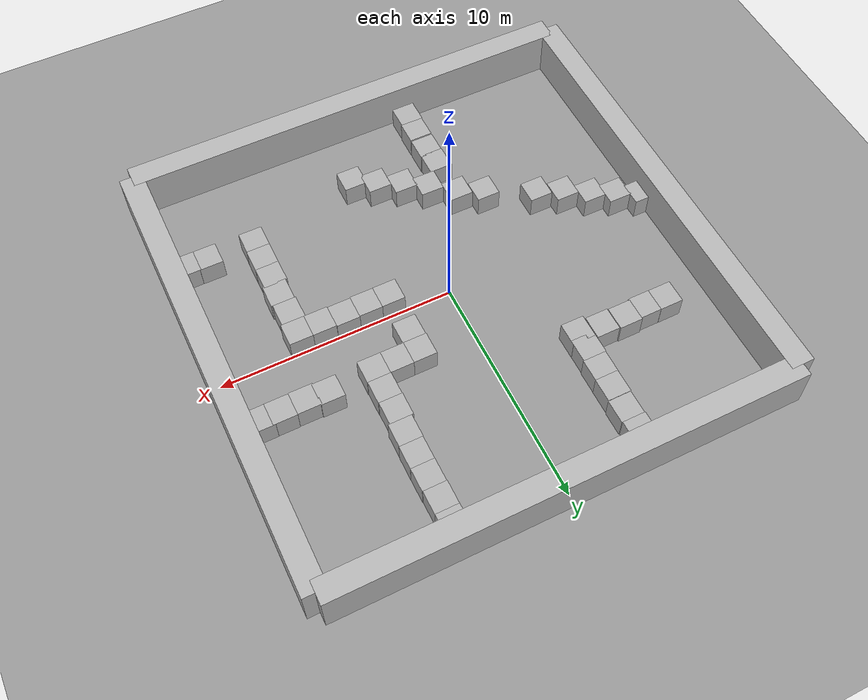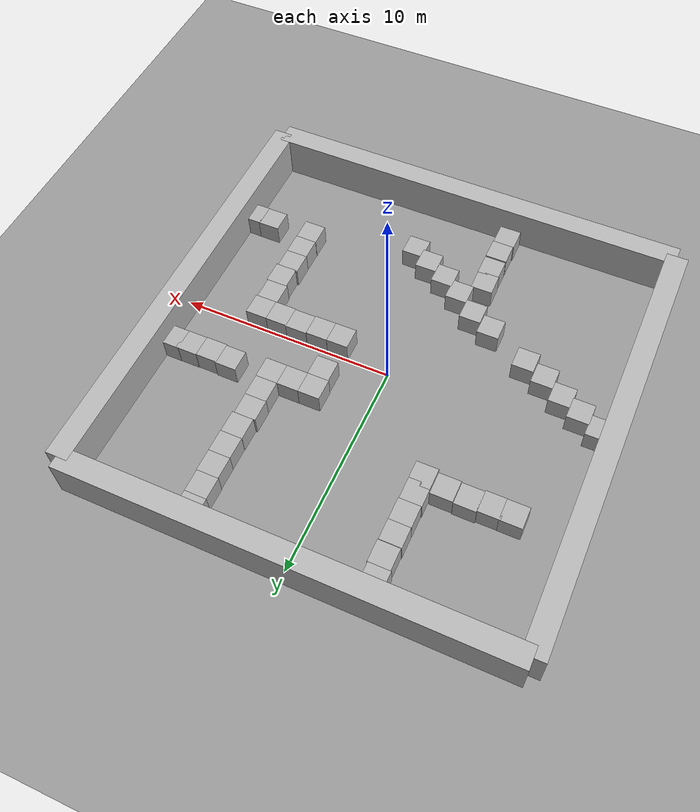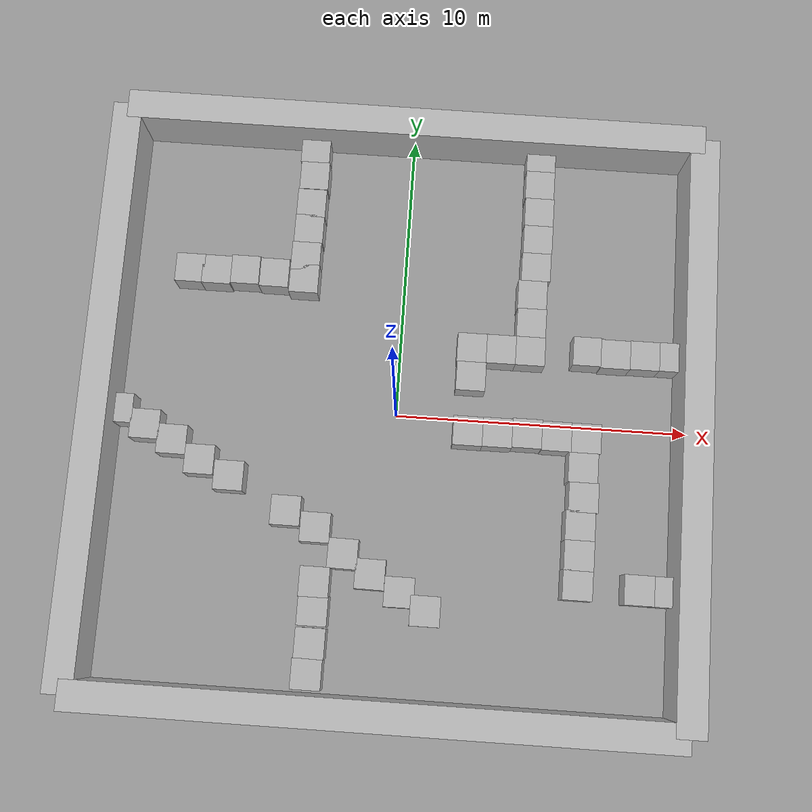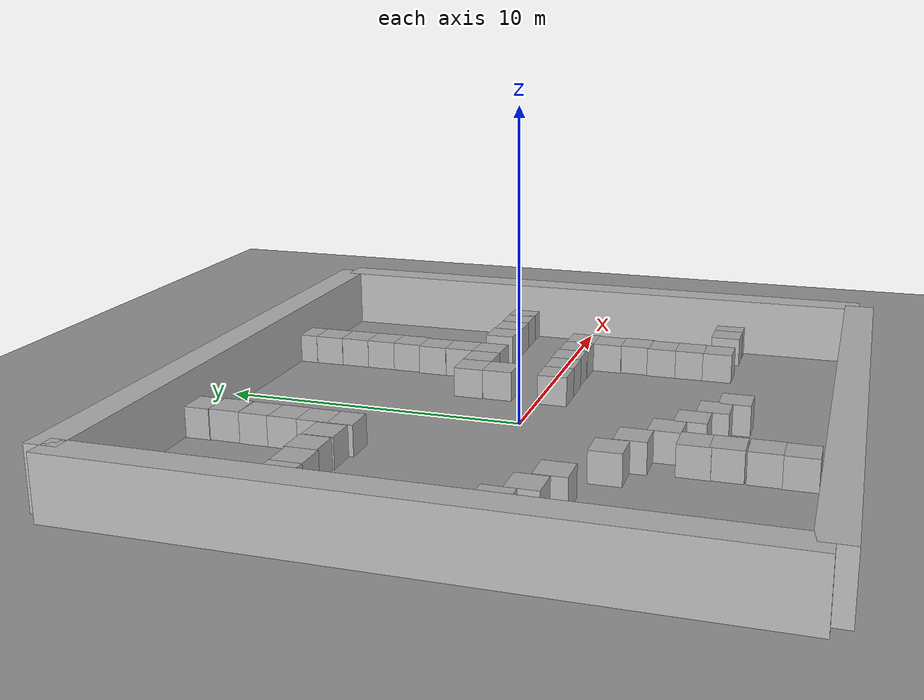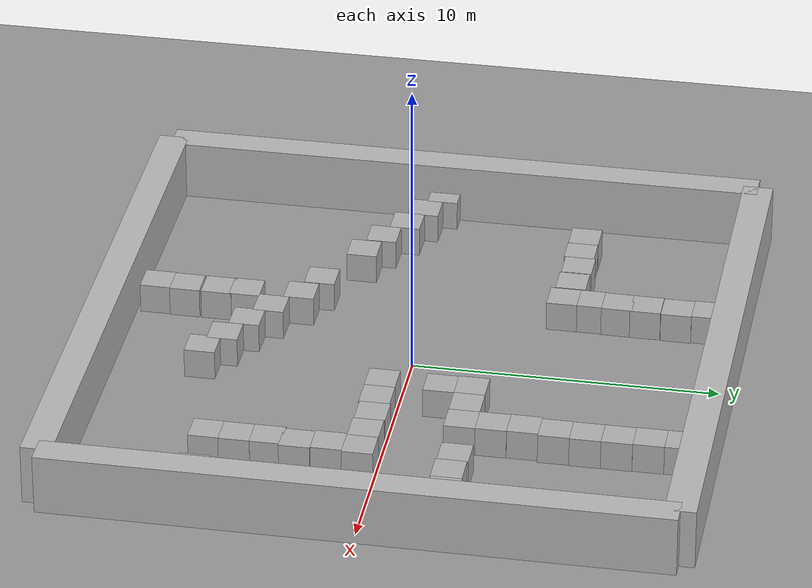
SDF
<sdf version="1.9">
 <world name="enclosed_world">
  <model name="ground_plane">
   <static>true</static>
   <link name="link">
    <collision name="col">
     <geometry><plane><normal>0 0 1</normal><size>100 100</size></plane></geometry>
     <surface><friction><ode><mu>1</mu><mu2>1</mu2></ode></friction></surface>
    </collision>
    <visual name="vis">
     <geometry><plane><normal>0 0 1</normal><size>100 100</size></plane></geometry>
     <material><ambient>0.6 0.6 0.6 1</ambient><diffuse>0.6 0.6 0.6 1</diffuse></material>
    </visual>
    <inertial>
     <mass>1</mass>
     <inertia><ixx>1</ixx><ixy>0</ixy><ixz>0</ixz><iyy>1</iyy><iyz>0</iyz><izz>1</izz></inertia>
    </inertial>
   </link>
  </model>
  <model name="wall_north">
   <static>true</static>
   <pose>0 10 1 0 -0 0</pose>
   <link name="l">
    <collision name="c"><geometry><box><size>20 1 2</size></box></geometry></collision>
    <visual name="v"><geometry><box><size>20 1 2</size></box></geometry></visual>
    <inertial>
     <mass>1</mass>
     <inertia><ixx>1</ixx><ixy>0</ixy><ixz>0</ixz><iyy>1</iyy><iyz>0</iyz><izz>1</izz></inertia>
    </inertial>
   </link>
  </model>
  <model name="wall_south">
   <static>true</static>
   <pose>0 -10 1 0 -0 0</pose>
   <link name="l">
    <collision name="c"><geometry><box><size>20 1 2</size></box></geometry></collision>
    <visual name="v"><geometry><box><size>20 1 2</size></box></geometry></visual>
    <inertial>
     <mass>1</mass>
     <inertia><ixx>1</ixx><ixy>0</ixy><ixz>0</ixz><iyy>1</iyy><iyz>0</iyz><izz>1</izz></inertia>
    </inertial>
   </link>
  </model>
  <model name="wall_east">
   <static>true</static>
   <pose>10 0 1 0 -0 0</pose>
   <link name="l">
    <collision name="c"><geometry><box><size>1 20 2</size></box></geometry></collision>
    <visual name="v"><geometry><box><size>1 20 2</size></box></geometry></visual>
    <inertial>
     <mass>1</mass>
     <inertia><ixx>1</ixx><ixy>0</ixy><ixz>0</ixz><iyy>1</iyy><iyz>0</iyz><izz>1</izz></inertia>
    </inertial>
   </link>
  </model>
  <model name="wall_west">
   <static>true</static>
   <pose>-10 0 1 0 -0 0</pose>
   <link name="l">
    <collision name="c"><geometry><box><size>1 20 2</size></box></geometry></collision>
    <visual name="v"><geometry><box><size>1 20 2</size></box></geometry></visual>
    <inertial>
     <mass>1</mass>
     <inertia><ixx>1</ixx><ixy>0</ixy><ixz>0</ixz><iyy>1</iyy><iyz>0</iyz><izz>1</izz></inertia>
    </inertial>
   </link>
  </model>
  <model name="box">
   <pose>4.44078 2.36959 0.5 0 0 -0</pose>
   <link name="box_link">
    <inertial>
     <inertia><ixx>0.16666</ixx><ixy>0</ixy><ixz>0</ixz><iyy>0.16666</iyy><iyz>0</iyz><izz>0.16666</izz></inertia>
     <mass>1</mass>
    </inertial>
    <collision name="box_collision"><geometry><box><size>1 1 1</size></box></geometry></collision>
    <visual name="box_visual">
     <geometry><box><size>1 1 1</size></box></geometry>
     <material>
      <ambient>0.3 0.3 0.3 1</ambient>
      <diffuse>0.7 0.7 0.7 1</diffuse>
      <specular>1 1 1 1</specular>
     </material>
    </visual>
   </link>
   <static>false</static>
  </model>
  <model name="box_0">
   <pose>3.44078 2.36959 0.5 0 0 -3e-06</pose>
   <link name="box_link">
    <inertial>
     <inertia><ixx>0.16666</ixx><ixy>0</ixy><ixz>0</ixz><iyy>0.16666</iyy><iyz>0</iyz><izz>0.16666</izz></inertia>
     <mass>1</mass>
    </inertial>
    <collision name="box_collision"><geometry><box><size>1 1 1</size></box></geometry></collision>
    <visual name="box_visual">
     <geometry><box><size>1 1 1</size></box></geometry>
     <material>
      <ambient>0.3 0.3 0.3 1</ambient>
      <diffuse>0.7 0.7 0.7 1</diffuse>
      <specular>1 1 1 1</specular>
     </material>
    </visual>
   </link>
   <static>false</static>
  </model>
  <model name="box_1">
   <pose>2.44078 2.36509 0.5 -0 -0 -0</pose>
   <link name="box_link">
    <inertial>
     <inertia><ixx>0.16666</ixx><ixy>0</ixy><ixz>0</ixz><iyy>0.16666</iyy><iyz>0</iyz><izz>0.16666</izz></inertia>
     <mass>1</mass>
    </inertial>
    <collision name="box_collision"><geometry><box><size>1 1 1</size></box></geometry></collision>
    <visual name="box_visual">
     <geometry><box><size>1 1 1</size></box></geometry>
     <material>
      <ambient>0.3 0.3 0.3 1</ambient>
      <diffuse>0.7 0.7 0.7 1</diffuse>
      <specular>1 1 1 1</specular>
     </material>
    </visual>
   </link>
   <static>false</static>
  </model>
  <model name="box_2">
   <pose>2.46891 -0.52377 0.5 0 -0 0</pose>
   <link name="box_link">
    <inertial>
     <inertia><ixx>0.16666</ixx><ixy>0</ixy><ixz>0</ixz><iyy>0.16666</iyy><iyz>0</iyz><izz>0.16666</izz></inertia>
     <mass>1</mass>
    </inertial>
    <collision name="box_collision"><geometry><box><size>1 1 1</size></box></geometry></collision>
    <visual name="box_visual">
     <geometry><box><size>1 1 1</size></box></geometry>
     <material>
      <ambient>0.3 0.3 0.3 1</ambient>
      <diffuse>0.7 0.7 0.7 1</diffuse>
      <specular>1 1 1 1</specular>
     </material>
    </visual>
   </link>
   <static>false</static>
  </model>
  <model name="box_3">
   <pose>3.46891 -0.515007 0.5 -0 -0 0</pose>
   <link name="box_link">
    <inertial>
     <inertia><ixx>0.16666</ixx><ixy>0</ixy><ixz>0</ixz><iyy>0.16666</iyy><iyz>0</iyz><izz>0.16666</izz></inertia>
     <mass>1</mass>
    </inertial>
    <collision name="box_collision"><geometry><box><size>1 1 1</size></box></geometry></collision>
    <visual name="box_visual">
     <geometry><box><size>1 1 1</size></box></geometry>
     <material>
      <ambient>0.3 0.3 0.3 1</ambient>
      <diffuse>0.7 0.7 0.7 1</diffuse>
      <specular>1 1 1 1</specular>
     </material>
    </visual>
   </link>
   <static>false</static>
  </model>
  <model name="box_4">
   <pose>4.46891 -0.478654 0.5 0 -0 0</pose>
   <link name="box_link">
    <inertial>
     <inertia><ixx>0.16666</ixx><ixy>0</ixy><ixz>0</ixz><iyy>0.16666</iyy><iyz>0</iyz><izz>0.16666</izz></inertia>
     <mass>1</mass>
    </inertial>
    <collision name="box_collision"><geometry><box><size>1 1 1</size></box></geometry></collision>
    <visual name="box_visual">
     <geometry><box><size>1 1 1</size></box></geometry>
     <material>
      <ambient>0.3 0.3 0.3 1</ambient>
      <diffuse>0.7 0.7 0.7 1</diffuse>
      <specular>1 1 1 1</specular>
     </material>
    </visual>
   </link>
   <static>false</static>
  </model>
  <model name="box_5">
   <pose>2.46439 1.36509 0.5 0 0 -1e-06</pose>
   <link name="box_link">
    <inertial>
     <inertia><ixx>0.16666</ixx><ixy>0</ixy><ixz>0</ixz><iyy>0.16666</iyy><iyz>0</iyz><izz>0.16666</izz></inertia>
     <mass>1</mass>
    </inertial>
    <collision name="box_collision"><geometry><box><size>1 1 1</size></box></geometry></collision>
    <visual name="box_visual">
     <geometry><box><size>1 1 1</size></box></geometry>
     <material>
      <ambient>0.3 0.3 0.3 1</ambient>
      <diffuse>0.7 0.7 0.7 1</diffuse>
      <specular>1 1 1 1</specular>
     </material>
    </visual>
   </link>
   <static>false</static>
  </model>
  <model name="box_6">
   <pose>4.42842 3.36958 0.5 0 -0 -0</pose>
   <link name="box_link">
    <inertial>
     <inertia><ixx>0.16666</ixx><ixy>0</ixy><ixz>0</ixz><iyy>0.16666</iyy><iyz>0</iyz><izz>0.16666</izz></inertia>
     <mass>1</mass>
    </inertial>
    <collision name="box_collision"><geometry><box><size>1 1 1</size></box></geometry></collision>
    <visual name="box_visual">
     <geometry><box><size>1 1 1</size></box></geometry>
     <material>
      <ambient>0.3 0.3 0.3 1</ambient>
      <diffuse>0.7 0.7 0.7 1</diffuse>
      <specular>1 1 1 1</specular>
     </material>
    </visual>
   </link>
   <static>false</static>
  </model>
  <model name="box_7">
   <pose>4.41261 4.36958 0.5 0 -0 -0</pose>
   <link name="box_link">
    <inertial>
     <inertia><ixx>0.16666</ixx><ixy>0</ixy><ixz>0</ixz><iyy>0.16666</iyy><iyz>0</iyz><izz>0.16666</izz></inertia>
     <mass>1</mass>
    </inertial>
    <collision name="box_collision"><geometry><box><size>1 1 1</size></box></geometry></collision>
    <visual name="box_visual">
     <geometry><box><size>1 1 1</size></box></geometry>
     <material>
      <ambient>0.3 0.3 0.3 1</ambient>
      <diffuse>0.7 0.7 0.7 1</diffuse>
      <specular>1 1 1 1</specular>
     </material>
    </visual>
   </link>
   <static>false</static>
  </model>
  <model name="box_8">
   <pose>6.39814 2.49226 0.5 0 -0 -2e-06</pose>
   <link name="box_link">
    <inertial>
     <inertia><ixx>0.16666</ixx><ixy>0</ixy><ixz>0</ixz><iyy>0.16666</iyy><iyz>0</iyz><izz>0.16666</izz></inertia>
     <mass>1</mass>
    </inertial>
    <collision name="box_collision"><geometry><box><size>1 1 1</size></box></geometry></collision>
    <visual name="box_visual">
     <geometry><box><size>1 1 1</size></box></geometry>
     <material>
      <ambient>0.3 0.3 0.3 1</ambient>
      <diffuse>0.7 0.7 0.7 1</diffuse>
      <specular>1 1 1 1</specular>
     </material>
    </visual>
   </link>
   <static>false</static>
  </model>
  <model name="box_9">
   <pose>8.35061 2.47251 0.5 0 -0 -0</pose>
   <link name="box_link">
    <inertial>
     <inertia><ixx>0.16666</ixx><ixy>0</ixy><ixz>0</ixz><iyy>0.16666</iyy><iyz>0</iyz><izz>0.16666</izz></inertia>
     <mass>1</mass>
    </inertial>
    <collision name="box_collision"><geometry><box><size>1 1 1</size></box></geometry></collision>
    <visual name="box_visual">
     <geometry><box><size>1 1 1</size></box></geometry>
     <material>
      <ambient>0.3 0.3 0.3 1</ambient>
      <diffuse>0.7 0.7 0.7 1</diffuse>
      <specular>1 1 1 1</specular>
     </material>
    </visual>
   </link>
   <static>false</static>
  </model>
  <model name="box_10">
   <pose>7.35061 2.45454 0.5 0 -0 -0</pose>
   <link name="box_link">
    <inertial>
     <inertia><ixx>0.16666</ixx><ixy>0</ixy><ixz>0</ixz><iyy>0.16666</iyy><iyz>0</iyz><izz>0.16666</izz></inertia>
     <mass>1</mass>
    </inertial>
    <collision name="box_collision"><geometry><box><size>1 1 1</size></box></geometry></collision>
    <visual name="box_visual">
     <geometry><box><size>1 1 1</size></box></geometry>
     <material>
      <ambient>0.3 0.3 0.3 1</ambient>
      <diffuse>0.7 0.7 0.7 1</diffuse>
      <specular>1 1 1 1</specular>
     </material>
    </visual>
   </link>
   <static>false</static>
  </model>
  <model name="box_11">
   <pose>4.48181 8.36958 0.5 0 -0 -0</pose>
   <link name="box_link">
    <inertial>
     <inertia><ixx>0.16666</ixx><ixy>0</ixy><ixz>0</ixz><iyy>0.16666</iyy><iyz>0</iyz><izz>0.16666</izz></inertia>
     <mass>1</mass>
    </inertial>
    <collision name="box_collision"><geometry><box><size>1 1 1</size></box></geometry></collision>
    <visual name="box_visual">
     <geometry><box><size>1 1 1</size></box></geometry>
     <material>
      <ambient>0.3 0.3 0.3 1</ambient>
      <diffuse>0.7 0.7 0.7 1</diffuse>
      <specular>1 1 1 1</specular>
     </material>
    </visual>
   </link>
   <static>false</static>
  </model>
  <model name="box_12">
   <pose>4.5019 7.36958 0.5 0 -0 -0</pose>
   <link name="box_link">
    <inertial>
     <inertia><ixx>0.16666</ixx><ixy>0</ixy><ixz>0</ixz><iyy>0.16666</iyy><iyz>0</iyz><izz>0.16666</izz></inertia>
     <mass>1</mass>
    </inertial>
    <collision name="box_collision"><geometry><box><size>1 1 1</size></box></geometry></collision>
    <visual name="box_visual">
     <geometry><box><size>1 1 1</size></box></geometry>
     <material>
      <ambient>0.3 0.3 0.3 1</ambient>
      <diffuse>0.7 0.7 0.7 1</diffuse>
      <specular>1 1 1 1</specular>
     </material>
    </visual>
   </link>
   <static>false</static>
  </model>
  <model name="box_13">
   <pose>4.50616 6.36957 0.5 0 -0 -0</pose>
   <link name="box_link">
    <inertial>
     <inertia><ixx>0.16666</ixx><ixy>0</ixy><ixz>0</ixz><iyy>0.16666</iyy><iyz>0</iyz><izz>0.16666</izz></inertia>
     <mass>1</mass>
    </inertial>
    <collision name="box_collision"><geometry><box><size>1 1 1</size></box></geometry></collision>
    <visual name="box_visual">
     <geometry><box><size>1 1 1</size></box></geometry>
     <material>
      <ambient>0.3 0.3 0.3 1</ambient>
      <diffuse>0.7 0.7 0.7 1</diffuse>
      <specular>1 1 1 1</specular>
     </material>
    </visual>
   </link>
   <static>false</static>
  </model>
  <model name="box_14">
   <pose>4.49189 5.36957 0.5 0 -0 -0</pose>
   <link name="box_link">
    <inertial>
     <inertia><ixx>0.16666</ixx><ixy>0</ixy><ixz>0</ixz><iyy>0.16666</iyy><iyz>0</iyz><izz>0.16666</izz></inertia>
     <mass>1</mass>
    </inertial>
    <collision name="box_collision"><geometry><box><size>1 1 1</size></box></geometry></collision>
    <visual name="box_visual">
     <geometry><box><size>1 1 1</size></box></geometry>
     <material>
      <ambient>0.3 0.3 0.3 1</ambient>
      <diffuse>0.7 0.7 0.7 1</diffuse>
      <specular>1 1 1 1</specular>
     </material>
    </visual>
   </link>
   <static>false</static>
  </model>
  <model name="box_15">
   <pose>4.47759 9.36957 0.5 0 -0 -0</pose>
   <link name="box_link">
    <inertial>
     <inertia><ixx>0.16666</ixx><ixy>0</ixy><ixz>0</ixz><iyy>0.16666</iyy><iyz>0</iyz><izz>0.16666</izz></inertia>
     <mass>1</mass>
    </inertial>
    <collision name="box_collision"><geometry><box><size>1 1 1</size></box></geometry></collision>
    <visual name="box_visual">
     <geometry><box><size>1 1 1</size></box></geometry>
     <material>
      <ambient>0.3 0.3 0.3 1</ambient>
      <diffuse>0.7 0.7 0.7 1</diffuse>
      <specular>1 1 1 1</specular>
     </material>
    </visual>
   </link>
   <static>false</static>
  </model>
  <model name="box_16">
   <pose>9.24167 2.48159 0.5 0 -0 0</pose>
   <link name="box_link">
    <inertial>
     <inertia><ixx>0.16666</ixx><ixy>0</ixy><ixz>0</ixz><iyy>0.16666</iyy><iyz>0</iyz><izz>0.16666</izz></inertia>
     <mass>1</mass>
    </inertial>
    <collision name="box_collision"><geometry><box><size>1 1 1</size></box></geometry></collision>
    <visual name="box_visual">
     <geometry><box><size>1 1 1</size></box></geometry>
     <material>
      <ambient>0.3 0.3 0.3 1</ambient>
      <diffuse>0.7 0.7 0.7 1</diffuse>
      <specular>1 1 1 1</specular>
     </material>
    </visual>
   </link>
   <static>false</static>
  </model>
  <model name="box_17">
   <pose>5.46777 -0.510438 0.5 0 0 -1e-06</pose>
   <link name="box_link">
    <inertial>
     <inertia><ixx>0.16666</ixx><ixy>0</ixy><ixz>0</ixz><iyy>0.16666</iyy><iyz>0</iyz><izz>0.16666</izz></inertia>
     <mass>1</mass>
    </inertial>
    <collision name="box_collision"><geometry><box><size>1 1 1</size></box></geometry></collision>
    <visual name="box_visual">
     <geometry><box><size>1 1 1</size></box></geometry>
     <material>
      <ambient>0.3 0.3 0.3 1</ambient>
      <diffuse>0.7 0.7 0.7 1</diffuse>
      <specular>1 1 1 1</specular>
     </material>
    </visual>
   </link>
   <static>false</static>
  </model>
  <model name="box_18">
   <pose>6.46777 -0.512362 0.5 -0 0 -1e-06</pose>
   <link name="box_link">
    <inertial>
     <inertia><ixx>0.16666</ixx><ixy>0</ixy><ixz>0</ixz><iyy>0.16666</iyy><iyz>0</iyz><izz>0.16666</izz></inertia>
     <mass>1</mass>
    </inertial>
    <collision name="box_collision"><geometry><box><size>1 1 1</size></box></geometry></collision>
    <visual name="box_visual">
     <geometry><box><size>1 1 1</size></box></geometry>
     <material>
      <ambient>0.3 0.3 0.3 1</ambient>
      <diffuse>0.7 0.7 0.7 1</diffuse>
      <specular>1 1 1 1</specular>
     </material>
    </visual>
   </link>
   <static>false</static>
  </model>
  <model name="box_19">
   <pose>6.40414 -1.51236 0.5 -0 -0 -1e-06</pose>
   <link name="box_link">
    <inertial>
     <inertia><ixx>0.16666</ixx><ixy>0</ixy><ixz>0</ixz><iyy>0.16666</iyy><iyz>0</iyz><izz>0.16666</izz></inertia>
     <mass>1</mass>
    </inertial>
    <collision name="box_collision"><geometry><box><size>1 1 1</size></box></geometry></collision>
    <visual name="box_visual">
     <geometry><box><size>1 1 1</size></box></geometry>
     <material>
      <ambient>0.3 0.3 0.3 1</ambient>
      <diffuse>0.7 0.7 0.7 1</diffuse>
      <specular>1 1 1 1</specular>
     </material>
    </visual>
   </link>
   <static>false</static>
  </model>
  <model name="box_20">
   <pose>6.45537 -2.51236 0.5 -0 0 -1e-06</pose>
   <link name="box_link">
    <inertial>
     <inertia><ixx>0.16666</ixx><ixy>0</ixy><ixz>0</ixz><iyy>0.16666</iyy><iyz>0</iyz><izz>0.16666</izz></inertia>
     <mass>1</mass>
    </inertial>
    <collision name="box_collision"><geometry><box><size>1 1 1</size></box></geometry></collision>
    <visual name="box_visual">
     <geometry><box><size>1 1 1</size></box></geometry>
     <material>
      <ambient>0.3 0.3 0.3 1</ambient>
      <diffuse>0.7 0.7 0.7 1</diffuse>
      <specular>1 1 1 1</specular>
     </material>
    </visual>
   </link>
   <static>false</static>
  </model>
  <model name="box_21">
   <pose>6.38344 -3.45868 0.5 0 -0 -1e-06</pose>
   <link name="box_link">
    <inertial>
     <inertia><ixx>0.16666</ixx><ixy>0</ixy><ixz>0</ixz><iyy>0.16666</iyy><iyz>0</iyz><izz>0.16666</izz></inertia>
     <mass>1</mass>
    </inertial>
    <collision name="box_collision"><geometry><box><size>1 1 1</size></box></geometry></collision>
    <visual name="box_visual">
     <geometry><box><size>1 1 1</size></box></geometry>
     <material>
      <ambient>0.3 0.3 0.3 1</ambient>
      <diffuse>0.7 0.7 0.7 1</diffuse>
      <specular>1 1 1 1</specular>
     </material>
    </visual>
   </link>
   <static>false</static>
  </model>
  <model name="box_22">
   <pose>6.38699 -4.44494 0.5 0 -0 -0</pose>
   <link name="box_link">
    <inertial>
     <inertia><ixx>0.16666</ixx><ixy>0</ixy><ixz>0</ixz><iyy>0.16666</iyy><iyz>0</iyz><izz>0.16666</izz></inertia>
     <mass>1</mass>
    </inertial>
    <collision name="box_collision"><geometry><box><size>1 1 1</size></box></geometry></collision>
    <visual name="box_visual">
     <geometry><box><size>1 1 1</size></box></geometry>
     <material>
      <ambient>0.3 0.3 0.3 1</ambient>
      <diffuse>0.7 0.7 0.7 1</diffuse>
      <specular>1 1 1 1</specular>
     </material>
    </visual>
   </link>
   <static>false</static>
  </model>
  <model name="box_23">
   <pose>6.3771 -5.41595 0.5 0 -0 -0</pose>
   <link name="box_link">
    <inertial>
     <inertia><ixx>0.16666</ixx><ixy>0</ixy><ixz>0</ixz><iyy>0.16666</iyy><iyz>0</iyz><izz>0.16666</izz></inertia>
     <mass>1</mass>
    </inertial>
    <collision name="box_collision"><geometry><box><size>1 1 1</size></box></geometry></collision>
    <visual name="box_visual">
     <geometry><box><size>1 1 1</size></box></geometry>
     <material>
      <ambient>0.3 0.3 0.3 1</ambient>
      <diffuse>0.7 0.7 0.7 1</diffuse>
      <specular>1 1 1 1</specular>
     </material>
    </visual>
   </link>
   <static>false</static>
  </model>
  <model name="box_24">
   <pose>8.40982 -5.44368 0.5 -0 -0 -0</pose>
   <link name="box_link">
    <inertial>
     <inertia><ixx>0.16666</ixx><ixy>0</ixy><ixz>0</ixz><iyy>0.16666</iyy><iyz>0</iyz><izz>0.16666</izz></inertia>
     <mass>1</mass>
    </inertial>
    <collision name="box_collision"><geometry><box><size>1 1 1</size></box></geometry></collision>
    <visual name="box_visual">
     <geometry><box><size>1 1 1</size></box></geometry>
     <material>
      <ambient>0.3 0.3 0.3 1</ambient>
      <diffuse>0.7 0.7 0.7 1</diffuse>
      <specular>1 1 1 1</specular>
     </material>
    </visual>
   </link>
   <static>false</static>
  </model>
  <model name="box_25">
   <pose>9.36696 -5.44943 0.5 0 -0 -0</pose>
   <link name="box_link">
    <inertial>
     <inertia><ixx>0.16666</ixx><ixy>0</ixy><ixz>0</ixz><iyy>0.16666</iyy><iyz>0</iyz><izz>0.16666</izz></inertia>
     <mass>1</mass>
    </inertial>
    <collision name="box_collision"><geometry><box><size>1 1 1</size></box></geometry></collision>
    <visual name="box_visual">
     <geometry><box><size>1 1 1</size></box></geometry>
     <material>
      <ambient>0.3 0.3 0.3 1</ambient>
      <diffuse>0.7 0.7 0.7 1</diffuse>
      <specular>1 1 1 1</specular>
     </material>
    </visual>
   </link>
   <static>false</static>
  </model>
  <model name="box_26">
   <pose>-3.49456 4.41836 0.5 0 -0 -0</pose>
   <link name="box_link">
    <inertial>
     <inertia><ixx>0.16666</ixx><ixy>0</ixy><ixz>0</ixz><iyy>0.16666</iyy><iyz>0</iyz><izz>0.16666</izz></inertia>
     <mass>1</mass>
    </inertial>
    <collision name="box_collision"><geometry><box><size>1 1 1</size></box></geometry></collision>
    <visual name="box_visual">
     <geometry><box><size>1 1 1</size></box></geometry>
     <material>
      <ambient>0.3 0.3 0.3 1</ambient>
      <diffuse>0.7 0.7 0.7 1</diffuse>
      <specular>1 1 1 1</specular>
     </material>
    </visual>
   </link>
   <static>false</static>
  </model>
  <model name="box_27">
   <pose>-7.46184 4.54331 0.5 0 -0 -1e-06</pose>
   <link name="box_link">
    <inertial>
     <inertia><ixx>0.16666</ixx><ixy>0</ixy><ixz>0</ixz><iyy>0.16666</iyy><iyz>0</iyz><izz>0.16666</izz></inertia>
     <mass>1</mass>
    </inertial>
    <collision name="box_collision"><geometry><box><size>1 1 1</size></box></geometry></collision>
    <visual name="box_visual">
     <geometry><box><size>1 1 1</size></box></geometry>
     <material>
      <ambient>0.3 0.3 0.3 1</ambient>
      <diffuse>0.7 0.7 0.7 1</diffuse>
      <specular>1 1 1 1</specular>
     </material>
    </visual>
   </link>
   <static>false</static>
  </model>
  <model name="box_28">
   <pose>-6.53315 4.5375 0.5 -0 0 -0</pose>
   <link name="box_link">
    <inertial>
     <inertia><ixx>0.16666</ixx><ixy>0</ixy><ixz>0</ixz><iyy>0.16666</iyy><iyz>0</iyz><izz>0.16666</izz></inertia>
     <mass>1</mass>
    </inertial>
    <collision name="box_collision"><geometry><box><size>1 1 1</size></box></geometry></collision>
    <visual name="box_visual">
     <geometry><box><size>1 1 1</size></box></geometry>
     <material>
      <ambient>0.3 0.3 0.3 1</ambient>
      <diffuse>0.7 0.7 0.7 1</diffuse>
      <specular>1 1 1 1</specular>
     </material>
    </visual>
   </link>
   <static>false</static>
  </model>
  <model name="box_29">
   <pose>-5.55331 4.59268 0.5 -0 0 0</pose>
   <link name="box_link">
    <inertial>
     <inertia><ixx>0.16666</ixx><ixy>0</ixy><ixz>0</ixz><iyy>0.16666</iyy><iyz>0</iyz><izz>0.16666</izz></inertia>
     <mass>1</mass>
    </inertial>
    <collision name="box_collision"><geometry><box><size>1 1 1</size></box></geometry></collision>
    <visual name="box_visual">
     <geometry><box><size>1 1 1</size></box></geometry>
     <material>
      <ambient>0.3 0.3 0.3 1</ambient>
      <diffuse>0.7 0.7 0.7 1</diffuse>
      <specular>1 1 1 1</specular>
     </material>
    </visual>
   </link>
   <static>false</static>
  </model>
  <model name="box_30">
   <pose>-4.53029 4.55565 0.5 0 -0 0</pose>
   <link name="box_link">
    <inertial>
     <inertia><ixx>0.16666</ixx><ixy>0</ixy><ixz>0</ixz><iyy>0.16666</iyy><iyz>0</iyz><izz>0.16666</izz></inertia>
     <mass>1</mass>
    </inertial>
    <collision name="box_collision"><geometry><box><size>1 1 1</size></box></geometry></collision>
    <visual name="box_visual">
     <geometry><box><size>1 1 1</size></box></geometry>
     <material>
      <ambient>0.3 0.3 0.3 1</ambient>
      <diffuse>0.7 0.7 0.7 1</diffuse>
      <specular>1 1 1 1</specular>
     </material>
    </visual>
   </link>
   <static>false</static>
  </model>
  <model name="box_31">
   <pose>-3.46994 9.18271 0.5 0 0 0</pose>
   <link name="box_link">
    <inertial>
     <inertia><ixx>0.16666</ixx><ixy>0</ixy><ixz>0</ixz><iyy>0.16666</iyy><iyz>0</iyz><izz>0.16666</izz></inertia>
     <mass>1</mass>
    </inertial>
    <collision name="box_collision"><geometry><box><size>1 1 1</size></box></geometry></collision>
    <visual name="box_visual">
     <geometry><box><size>1 1 1</size></box></geometry>
     <material>
      <ambient>0.3 0.3 0.3 1</ambient>
      <diffuse>0.7 0.7 0.7 1</diffuse>
      <specular>1 1 1 1</specular>
     </material>
    </visual>
   </link>
   <static>false</static>
  </model>
  <model name="box_32">
   <pose>-3.43536 8.18271 0.5 0 0 0</pose>
   <link name="box_link">
    <inertial>
     <inertia><ixx>0.16666</ixx><ixy>0</ixy><ixz>0</ixz><iyy>0.16666</iyy><iyz>0</iyz><izz>0.16666</izz></inertia>
     <mass>1</mass>
    </inertial>
    <collision name="box_collision"><geometry><box><size>1 1 1</size></box></geometry></collision>
    <visual name="box_visual">
     <geometry><box><size>1 1 1</size></box></geometry>
     <material>
      <ambient>0.3 0.3 0.3 1</ambient>
      <diffuse>0.7 0.7 0.7 1</diffuse>
      <specular>1 1 1 1</specular>
     </material>
    </visual>
   </link>
   <static>false</static>
  </model>
  <model name="box_33">
   <pose>-3.46101 7.1691 0.5 -0 -0 -0</pose>
   <link name="box_link">
    <inertial>
     <inertia><ixx>0.16666</ixx><ixy>0</ixy><ixz>0</ixz><iyy>0.16666</iyy><iyz>0</iyz><izz>0.16666</izz></inertia>
     <mass>1</mass>
    </inertial>
    <collision name="box_collision"><geometry><box><size>1 1 1</size></box></geometry></collision>
    <visual name="box_visual">
     <geometry><box><size>1 1 1</size></box></geometry>
     <material>
      <ambient>0.3 0.3 0.3 1</ambient>
      <diffuse>0.7 0.7 0.7 1</diffuse>
      <specular>1 1 1 1</specular>
     </material>
    </visual>
   </link>
   <static>false</static>
  </model>
  <model name="box_34">
   <pose>-3.46902 6.22788 0.5 -0 0 0</pose>
   <link name="box_link">
    <inertial>
     <inertia><ixx>0.16666</ixx><ixy>0</ixy><ixz>0</ixz><iyy>0.16666</iyy><iyz>0</iyz><izz>0.16666</izz></inertia>
     <mass>1</mass>
    </inertial>
    <collision name="box_collision"><geometry><box><size>1 1 1</size></box></geometry></collision>
    <visual name="box_visual">
     <geometry><box><size>1 1 1</size></box></geometry>
     <material>
      <ambient>0.3 0.3 0.3 1</ambient>
      <diffuse>0.7 0.7 0.7 1</diffuse>
      <specular>1 1 1 1</specular>
     </material>
    </visual>
   </link>
   <static>false</static>
  </model>
  <model name="box_35">
   <pose>-3.49648 5.2284 0.5 0 -0 -0</pose>
   <link name="box_link">
    <inertial>
     <inertia><ixx>0.16666</ixx><ixy>0</ixy><ixz>0</ixz><iyy>0.16666</iyy><iyz>0</iyz><izz>0.16666</izz></inertia>
     <mass>1</mass>
    </inertial>
    <collision name="box_collision"><geometry><box><size>1 1 1</size></box></geometry></collision>
    <visual name="box_visual">
     <geometry><box><size>1 1 1</size></box></geometry>
     <material>
      <ambient>0.3 0.3 0.3 1</ambient>
      <diffuse>0.7 0.7 0.7 1</diffuse>
      <specular>1 1 1 1</specular>
     </material>
    </visual>
   </link>
   <static>false</static>
  </model>
  <model name="box_36">
   <pose>-9.38444 -0.531525 0.5 -0 0 -5e-06</pose>
   <link name="box_link">
    <inertial>
     <inertia><ixx>0.16666</ixx><ixy>0</ixy><ixz>0</ixz><iyy>0.16666</iyy><iyz>0</iyz><izz>0.16666</izz></inertia>
     <mass>1</mass>
    </inertial>
    <collision name="box_collision"><geometry><box><size>1 1 1</size></box></geometry></collision>
    <visual name="box_visual">
     <geometry><box><size>1 1 1</size></box></geometry>
     <material>
      <ambient>0.3 0.3 0.3 1</ambient>
      <diffuse>0.7 0.7 0.7 1</diffuse>
      <specular>1 1 1 1</specular>
     </material>
    </visual>
   </link>
   <static>false</static>
  </model>
  <model name="box_37">
   <pose>-8.42518 -1.02518 0.5 0 0 -0.005909</pose>
   <link name="box_link">
    <inertial>
     <inertia><ixx>0.16666</ixx><ixy>0</ixy><ixz>0</ixz><iyy>0.16666</iyy><iyz>0</iyz><izz>0.16666</izz></inertia>
     <mass>1</mass>
    </inertial>
    <collision name="box_collision"><geometry><box><size>1 1 1</size></box></geometry></collision>
    <visual name="box_visual">
     <geometry><box><size>1 1 1</size></box></geometry>
     <material>
      <ambient>0.3 0.3 0.3 1</ambient>
      <diffuse>0.7 0.7 0.7 1</diffuse>
      <specular>1 1 1 1</specular>
     </material>
    </visual>
   </link>
   <static>false</static>
  </model>
  <model name="box_38">
   <pose>-7.46376 -1.48508 0.5 0 0 -0.005911</pose>
   <link name="box_link">
    <inertial>
     <inertia><ixx>0.16666</ixx><ixy>0</ixy><ixz>0</ixz><iyy>0.16666</iyy><iyz>0</iyz><izz>0.16666</izz></inertia>
     <mass>1</mass>
    </inertial>
    <collision name="box_collision"><geometry><box><size>1 1 1</size></box></geometry></collision>
    <visual name="box_visual">
     <geometry><box><size>1 1 1</size></box></geometry>
     <material>
      <ambient>0.3 0.3 0.3 1</ambient>
      <diffuse>0.7 0.7 0.7 1</diffuse>
      <specular>1 1 1 1</specular>
     </material>
    </visual>
   </link>
   <static>false</static>
  </model>
  <model name="box_39">
   <pose>-6.46919 -2.10188 0.5 0 0 -0.003381</pose>
   <link name="box_link">
    <inertial>
     <inertia><ixx>0.16666</ixx><ixy>0</ixy><ixz>0</ixz><iyy>0.16666</iyy><iyz>0</iyz><izz>0.16666</izz></inertia>
     <mass>1</mass>
    </inertial>
    <collision name="box_collision"><geometry><box><size>1 1 1</size></box></geometry></collision>
    <visual name="box_visual">
     <geometry><box><size>1 1 1</size></box></geometry>
     <material>
      <ambient>0.3 0.3 0.3 1</ambient>
      <diffuse>0.7 0.7 0.7 1</diffuse>
      <specular>1 1 1 1</specular>
     </material>
    </visual>
   </link>
   <static>false</static>
  </model>
  <model name="box_40">
   <pose>-5.43945 -2.57687 0.5 0 -0 0</pose>
   <link name="box_link">
    <inertial>
     <inertia><ixx>0.16666</ixx><ixy>0</ixy><ixz>0</ixz><iyy>0.16666</iyy><iyz>0</iyz><izz>0.16666</izz></inertia>
     <mass>1</mass>
    </inertial>
    <collision name="box_collision"><geometry><box><size>1 1 1</size></box></geometry></collision>
    <visual name="box_visual">
     <geometry><box><size>1 1 1</size></box></geometry>
     <material>
      <ambient>0.3 0.3 0.3 1</ambient>
      <diffuse>0.7 0.7 0.7 1</diffuse>
      <specular>1 1 1 1</specular>
     </material>
    </visual>
   </link>
   <static>false</static>
  </model>
  <model name="box_41">
   <pose>-3.43062 -3.61516 0.5 -0 -0 0</pose>
   <link name="box_link">
    <inertial>
     <inertia><ixx>0.16666</ixx><ixy>0</ixy><ixz>0</ixz><iyy>0.16666</iyy><iyz>0</iyz><izz>0.16666</izz></inertia>
     <mass>1</mass>
    </inertial>
    <collision name="box_collision"><geometry><box><size>1 1 1</size></box></geometry></collision>
    <visual name="box_visual">
     <geometry><box><size>1 1 1</size></box></geometry>
     <material>
      <ambient>0.3 0.3 0.3 1</ambient>
      <diffuse>0.7 0.7 0.7 1</diffuse>
      <specular>1 1 1 1</specular>
     </material>
    </visual>
   </link>
   <static>false</static>
  </model>
  <model name="box_42">
   <pose>-2.40221 -4.10838 0.5 -0 -0 -0.001087</pose>
   <link name="box_link">
    <inertial>
     <inertia><ixx>0.16666</ixx><ixy>0</ixy><ixz>0</ixz><iyy>0.16666</iyy><iyz>0</iyz><izz>0.16666</izz></inertia>
     <mass>1</mass>
    </inertial>
    <collision name="box_collision"><geometry><box><size>1 1 1</size></box></geometry></collision>
    <visual name="box_visual">
     <geometry><box><size>1 1 1</size></box></geometry>
     <material>
      <ambient>0.3 0.3 0.3 1</ambient>
      <diffuse>0.7 0.7 0.7 1</diffuse>
      <specular>1 1 1 1</specular>
     </material>
    </visual>
   </link>
   <static>false</static>
  </model>
  <model name="box_43">
   <pose>-1.41879 -4.91625 0.5 -0 -0 -0.012049</pose>
   <link name="box_link">
    <inertial>
     <inertia><ixx>0.16666</ixx><ixy>0</ixy><ixz>0</ixz><iyy>0.16666</iyy><iyz>0</iyz><izz>0.16666</izz></inertia>
     <mass>1</mass>
    </inertial>
    <collision name="box_collision"><geometry><box><size>1 1 1</size></box></geometry></collision>
    <visual name="box_visual">
     <geometry><box><size>1 1 1</size></box></geometry>
     <material>
      <ambient>0.3 0.3 0.3 1</ambient>
      <diffuse>0.7 0.7 0.7 1</diffuse>
      <specular>1 1 1 1</specular>
     </material>
    </visual>
   </link>
   <static>false</static>
  </model>
  <model name="box_44">
   <pose>-0.468129 -5.52814 0.5 0 0 -0.009876</pose>
   <link name="box_link">
    <inertial>
     <inertia><ixx>0.16666</ixx><ixy>0</ixy><ixz>0</ixz><iyy>0.16666</iyy><iyz>0</iyz><izz>0.16666</izz></inertia>
     <mass>1</mass>
    </inertial>
    <collision name="box_collision"><geometry><box><size>1 1 1</size></box></geometry></collision>
    <visual name="box_visual">
     <geometry><box><size>1 1 1</size></box></geometry>
     <material>
      <ambient>0.3 0.3 0.3 1</ambient>
      <diffuse>0.7 0.7 0.7 1</diffuse>
      <specular>1 1 1 1</specular>
     </material>
    </visual>
   </link>
   <static>false</static>
  </model>
  <model name="box_45">
   <pose>0.531627 -6.04731 0.5 0 0 -0.000158</pose>
   <link name="box_link">
    <inertial>
     <inertia><ixx>0.16666</ixx><ixy>0</ixy><ixz>0</ixz><iyy>0.16666</iyy><iyz>0</iyz><izz>0.16666</izz></inertia>
     <mass>1</mass>
    </inertial>
    <collision name="box_collision"><geometry><box><size>1 1 1</size></box></geometry></collision>
    <visual name="box_visual">
     <geometry><box><size>1 1 1</size></box></geometry>
     <material>
      <ambient>0.3 0.3 0.3 1</ambient>
      <diffuse>0.7 0.7 0.7 1</diffuse>
      <specular>1 1 1 1</specular>
     </material>
    </visual>
   </link>
   <static>false</static>
  </model>
  <model name="box_46">
   <pose>-2.28543 -5.89694 0.5 0 -0 -0</pose>
   <link name="box_link">
    <inertial>
     <inertia><ixx>0.16666</ixx><ixy>0</ixy><ixz>0</ixz><iyy>0.16666</iyy><iyz>0</iyz><izz>0.16666</izz></inertia>
     <mass>1</mass>
    </inertial>
    <collision name="box_collision"><geometry><box><size>1 1 1</size></box></geometry></collision>
    <visual name="box_visual">
     <geometry><box><size>1 1 1</size></box></geometry>
     <material>
      <ambient>0.3 0.3 0.3 1</ambient>
      <diffuse>0.7 0.7 0.7 1</diffuse>
      <specular>1 1 1 1</specular>
     </material>
    </visual>
   </link>
   <static>false</static>
  </model>
  <model name="box_47">
   <pose>-2.265 -6.83313 0.5 0 -0 -0</pose>
   <link name="box_link">
    <inertial>
     <inertia><ixx>0.16666</ixx><ixy>0</ixy><ixz>0</ixz><iyy>0.16666</iyy><iyz>0</iyz><izz>0.16666</izz></inertia>
     <mass>1</mass>
    </inertial>
    <collision name="box_collision"><geometry><box><size>1 1 1</size></box></geometry></collision>
    <visual name="box_visual">
     <geometry><box><size>1 1 1</size></box></geometry>
     <material>
      <ambient>0.3 0.3 0.3 1</ambient>
      <diffuse>0.7 0.7 0.7 1</diffuse>
      <specular>1 1 1 1</specular>
     </material>
    </visual>
   </link>
   <static>false</static>
  </model>
  <model name="box_48">
   <pose>-2.26755 -7.88611 0.5 -0 0 0</pose>
   <link name="box_link">
    <inertial>
     <inertia><ixx>0.16666</ixx><ixy>0</ixy><ixz>0</ixz><iyy>0.16666</iyy><iyz>0</iyz><izz>0.16666</izz></inertia>
     <mass>1</mass>
    </inertial>
    <collision name="box_collision"><geometry><box><size>1 1 1</size></box></geometry></collision>
    <visual name="box_visual">
     <geometry><box><size>1 1 1</size></box></geometry>
     <material>
      <ambient>0.3 0.3 0.3 1</ambient>
      <diffuse>0.7 0.7 0.7 1</diffuse>
      <specular>1 1 1 1</specular>
     </material>
    </visual>
   </link>
   <static>false</static>
  </model>
  <model name="box_49">
   <pose>-2.2971 -8.87765 0.5 0 -0 0</pose>
   <link name="box_link">
    <inertial>
     <inertia><ixx>0.16666</ixx><ixy>0</ixy><ixz>0</ixz><iyy>0.16666</iyy><iyz>0</iyz><izz>0.16666</izz></inertia>
     <mass>1</mass>
    </inertial>
    <collision name="box_collision"><geometry><box><size>1 1 1</size></box></geometry></collision>
    <visual name="box_visual">
     <geometry><box><size>1 1 1</size></box></geometry>
     <material>
      <ambient>0.3 0.3 0.3 1</ambient>
      <diffuse>0.7 0.7 0.7 1</diffuse>
      <specular>1 1 1 1</specular>
     </material>
    </visual>
   </link>
   <static>false</static>
  </model>
  <model name="box_50">
   <pose>1.42232 -6.60258 0.5 0 0 -9.5e-05</pose>
   <link name="box_link">
    <inertial>
     <inertia><ixx>0.16666</ixx><ixy>0</ixy><ixz>0</ixz><iyy>0.16666</iyy><iyz>0</iyz><izz>0.16666</izz></inertia>
     <mass>1</mass>
    </inertial>
    <collision name="box_collision"><geometry><box><size>1 1 1</size></box></geometry></collision>
    <visual name="box_visual">
     <geometry><box><size>1 1 1</size></box></geometry>
     <material>
      <ambient>0.3 0.3 0.3 1</ambient>
      <diffuse>0.7 0.7 0.7 1</diffuse>
      <specular>1 1 1 1</specular>
     </material>
    </visual>
   </link>
   <static>false</static>
  </model>
 </world>
</sdf>
